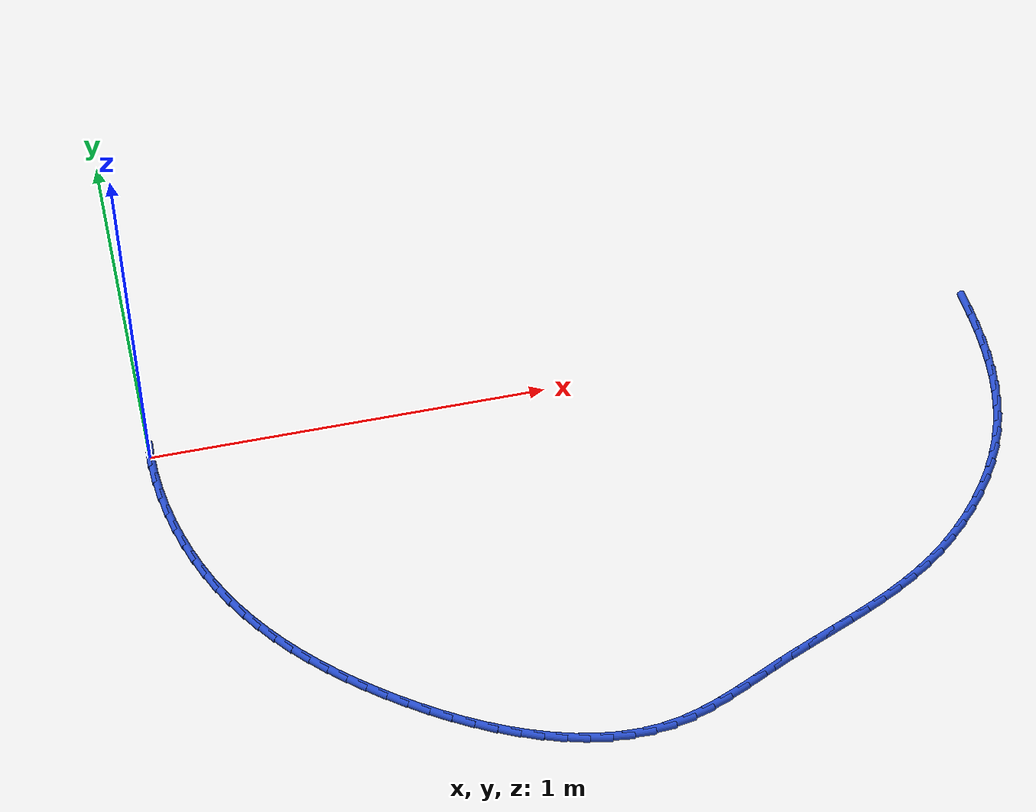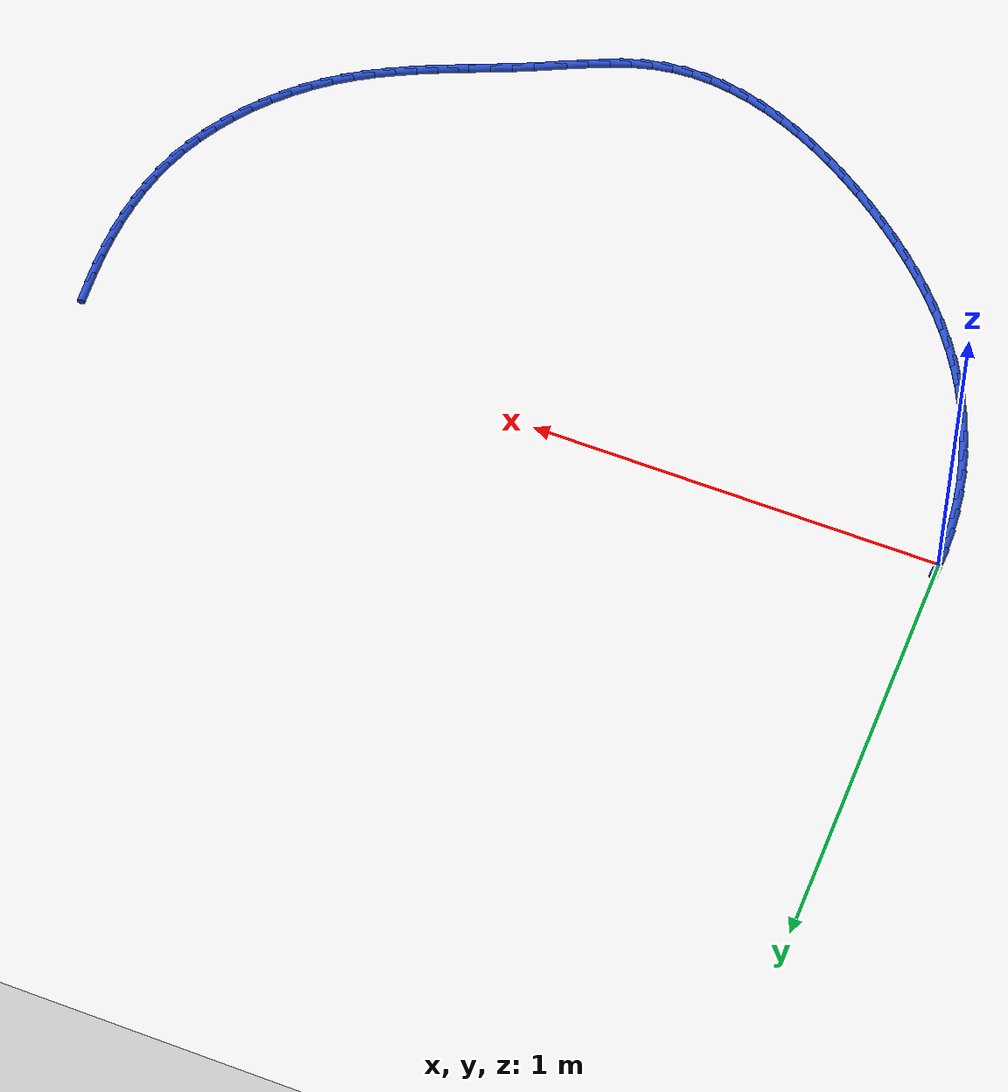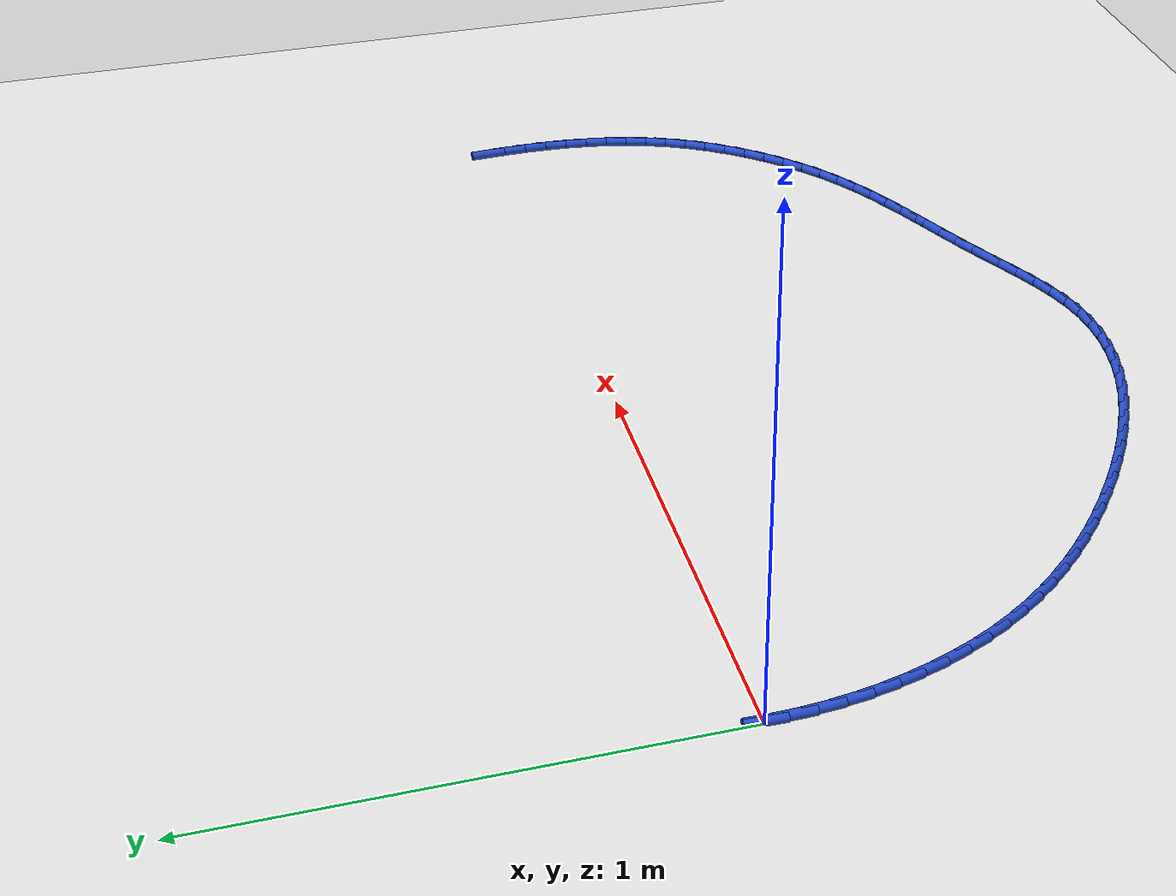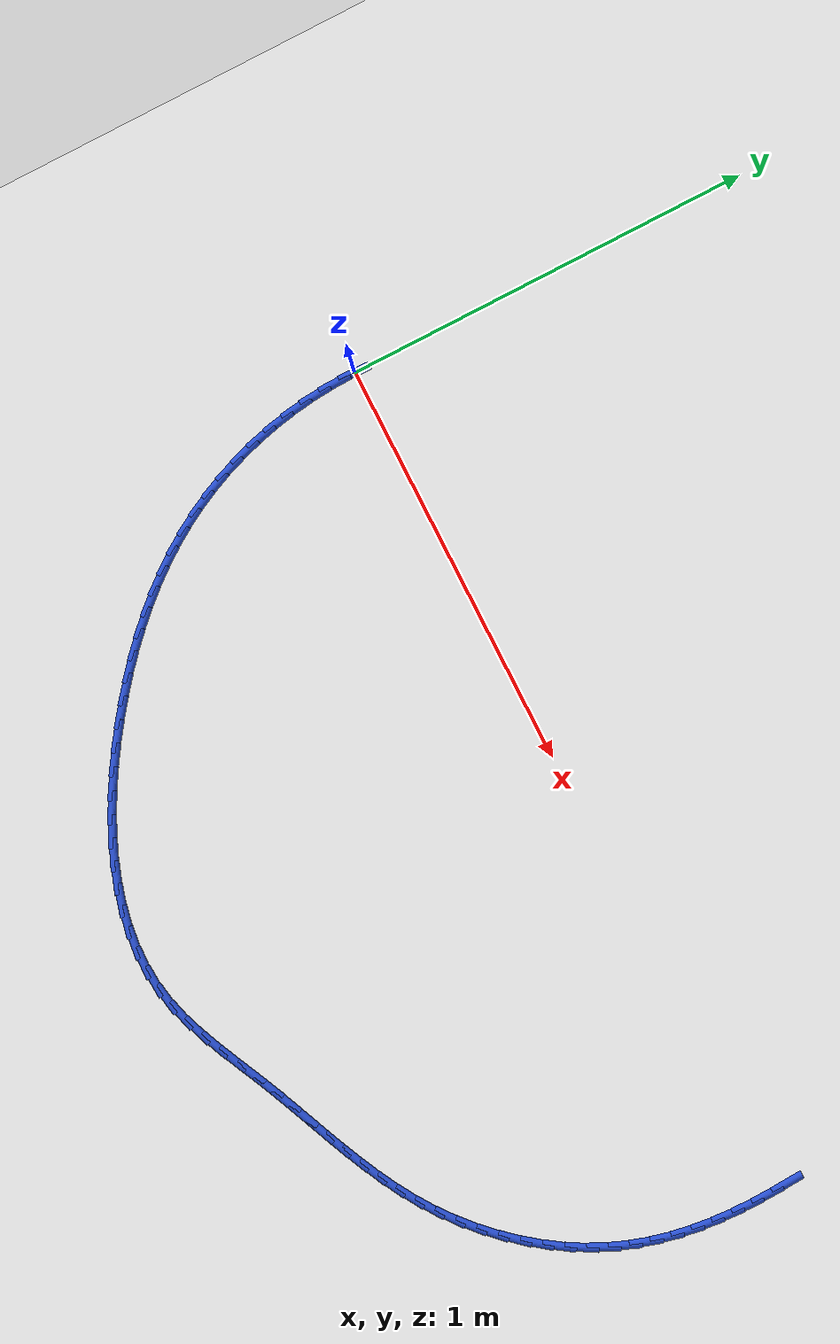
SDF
<sdf version="1.6">
 <world name="default">
  <model name="ground_plane">
   <static>1</static>
   <link name="link">
    <collision name="collision">
     <geometry><plane><normal>0 0 1</normal><size>100 100</size></plane></geometry>
     <surface><friction><ode><mu>100</mu><mu2>50</mu2></ode></friction></surface>
    </collision>
    <visual name="visual">
     <cast_shadows>0</cast_shadows>
     <geometry><plane><normal>0 0 1</normal><size>100 100</size></plane></geometry>
     <material>
      <script><uri>file://media/materials/scripts/gazebo.material</uri><name>Gazebo/WhiteGlow</name></script>
     </material>
    </visual>
   </link>
  </model>
  <model name="line">
   <link name="link_0">
    <pose>-1.5612511283791264e-17 -8.326672684688674e-17 0.01 0 1.57 1.539218456187788</pose>
    <collision name="collision">
     <geometry><cylinder><radius>0.01</radius><length>0.08</length></cylinder></geometry>
    </collision>
    <visual name="visual">
     <material>
      <script><name>Gazebo/Blue</name><uri>file://media/materials/scripts/gazebo.material</uri></script>
     </material>
     <geometry><cylinder><radius>0.01</radius><length>0.08</length></cylinder></geometry>
    </visual>
   </link>
   <link name="link_66">
    <pose>2.121710802949924 0.03383902879703837 0.01 0 1.57 -1.516752795284144</pose>
    <collision name="collision">
     <geometry><cylinder><radius>0.01</radius><length>0.08</length></cylinder></geometry>
    </collision>
    <visual name="visual">
     <material>
      <script><name>Gazebo/Blue</name><uri>file://media/materials/scripts/gazebo.material</uri></script>
     </material>
     <geometry><cylinder><radius>0.01</radius><length>0.08</length></cylinder></geometry>
    </visual>
   </link>
   <link name="link_67">
    <pose>2.124544965735657 -0.018552125512055075 0.01 0 1.57 -1.5530451899513327</pose>
    <collision name="collision">
     <geometry><cylinder><radius>0.01</radius><length>0.08</length></cylinder></geometry>
    </collision>
    <visual name="visual">
     <material>
      <script><name>Gazebo/Blue</name><uri>file://media/materials/scripts/gazebo.material</uri></script>
     </material>
     <geometry><cylinder><radius>0.01</radius><length>0.08</length></cylinder></geometry>
    </visual>
   </link>
   <link name="link_68">
    <pose>2.125463035978181 -0.07026564784786656 0.01 0 1.57 1.5468229711447778</pose>
    <collision name="collision">
     <geometry><cylinder><radius>0.01</radius><length>0.08</length></cylinder></geometry>
    </collision>
    <visual name="visual">
     <material>
      <script><name>Gazebo/Blue</name><uri>file://media/materials/scripts/gazebo.material</uri></script>
     </material>
     <geometry><cylinder><radius>0.01</radius><length>0.08</length></cylinder></geometry>
    </visual>
   </link>
   <link name="link_69">
    <pose>2.1242399769922318 -0.12127330353884397 0.01 0 1.57 1.499523361760676</pose>
    <collision name="collision">
     <geometry><cylinder><radius>0.01</radius><length>0.08</length></cylinder></geometry>
    </collision>
    <visual name="visual">
     <material>
      <script><name>Gazebo/Blue</name><uri>file://media/materials/scripts/gazebo.material</uri></script>
     </material>
     <geometry><cylinder><radius>0.01</radius><length>0.08</length></cylinder></geometry>
    </visual>
   </link>
   <link name="link_70">
    <pose>2.120650752092542 -0.1715468579134352 0.01 0 1.57 1.446609871704285</pose>
    <collision name="collision">
     <geometry><cylinder><radius>0.01</radius><length>0.08</length></cylinder></geometry>
    </collision>
    <visual name="visual">
     <material>
      <script><name>Gazebo/Blue</name><uri>file://media/materials/scripts/gazebo.material</uri></script>
     </material>
     <geometry><cylinder><radius>0.01</radius><length>0.08</length></cylinder></geometry>
    </visual>
   </link>
   <link name="link_71">
    <pose>2.114470324593847 -0.22105807630008606 0.01 0 1.57 1.3881950763023854</pose>
    <collision name="collision">
     <geometry><cylinder><radius>0.01</radius><length>0.08</length></cylinder></geometry>
    </collision>
    <visual name="visual">
     <material>
      <script><name>Gazebo/Blue</name><uri>file://media/materials/scripts/gazebo.material</uri></script>
     </material>
     <geometry><cylinder><radius>0.01</radius><length>0.08</length></cylinder></geometry>
    </visual>
   </link>
   <link name="link_72">
    <pose>2.1054736578108804 -0.26977872402724434 0.01 0 1.57 1.324590390201483</pose>
    <collision name="collision">
     <geometry><cylinder><radius>0.01</radius><length>0.08</length></cylinder></geometry>
    </collision>
    <visual name="visual">
     <material>
      <script><name>Gazebo/Blue</name><uri>file://media/materials/scripts/gazebo.material</uri></script>
     </material>
     <geometry><cylinder><radius>0.01</radius><length>0.08</length></cylinder></geometry>
    </visual>
   </link>
   <link name="link_73">
    <pose>2.0934357150583773 -0.3176805664233573 0.01 0 1.57 1.2563444600303963</pose>
    <collision name="collision">
     <geometry><cylinder><radius>0.01</radius><length>0.08</length></cylinder></geometry>
    </collision>
    <visual name="visual">
     <material>
      <script><name>Gazebo/Blue</name><uri>file://media/materials/scripts/gazebo.material</uri></script>
     </material>
     <geometry><cylinder><radius>0.01</radius><length>0.08</length></cylinder></geometry>
    </visual>
   </link>
   <link name="link_74">
    <pose>2.078131459651071 -0.3647353688168721 0.01 0 1.57 1.1842600952279532</pose>
    <collision name="collision">
     <geometry><cylinder><radius>0.01</radius><length>0.08</length></cylinder></geometry>
    </collision>
    <visual name="visual">
     <material>
      <script><name>Gazebo/Blue</name><uri>file://media/materials/scripts/gazebo.material</uri></script>
     </material>
     <geometry><cylinder><radius>0.01</radius><length>0.08</length></cylinder></geometry>
    </visual>
   </link>
   <link name="link_75">
    <pose>2.059335854903695 -0.41091489653623653 0.01 0 1.57 1.1095890347176138</pose>
    <collision name="collision">
     <geometry><cylinder><radius>0.01</radius><length>0.08</length></cylinder></geometry>
    </collision>
    <visual name="visual">
     <material>
      <script><name>Gazebo/Blue</name><uri>file://media/materials/scripts/gazebo.material</uri></script>
     </material>
     <geometry><cylinder><radius>0.01</radius><length>0.08</length></cylinder></geometry>
    </visual>
   </link>
   <link name="link_76">
    <pose>2.0368396584949444 -0.4561831254000856 0.01 0 1.57 1.0367382895987984</pose>
    <collision name="collision">
     <geometry><cylinder><radius>0.01</radius><length>0.08</length></cylinder></geometry>
    </collision>
    <visual name="visual">
     <material>
      <script><name>Gazebo/Blue</name><uri>file://media/materials/scripts/gazebo.material</uri></script>
     </material>
     <geometry><cylinder><radius>0.01</radius><length>0.08</length></cylinder></geometry>
    </visual>
   </link>
   <link name="link_77">
    <pose>2.0107095973649773 -0.5003679279135375 0.01 0 1.57 0.968061933112264</pose>
    <collision name="collision">
     <geometry><cylinder><radius>0.01</radius><length>0.08</length></cylinder></geometry>
    </collision>
    <visual name="visual">
     <material>
      <script><name>Gazebo/Blue</name><uri>file://media/materials/scripts/gazebo.material</uri></script>
     </material>
     <geometry><cylinder><radius>0.01</radius><length>0.08</length></cylinder></geometry>
    </visual>
   </link>
   <link name="link_78">
    <pose>1.9812471344347227 -0.5431814088160734 0.01 0 1.57 0.9025274810790618</pose>
    <collision name="collision">
     <geometry><cylinder><radius>0.01</radius><length>0.08</length></cylinder></geometry>
    </collision>
    <visual name="visual">
     <material>
      <script><name>Gazebo/Blue</name><uri>file://media/materials/scripts/gazebo.material</uri></script>
     </material>
     <geometry><cylinder><radius>0.01</radius><length>0.08</length></cylinder></geometry>
    </visual>
   </link>
   <link name="link_79">
    <pose>1.9487612125732368 -0.5843319838648571 0.01 0 1.57 0.8390540562935729</pose>
    <collision name="collision">
     <geometry><cylinder><radius>0.01</radius><length>0.08</length></cylinder></geometry>
    </collision>
    <visual name="visual">
     <material>
      <script><name>Gazebo/Blue</name><uri>file://media/materials/scripts/gazebo.material</uri></script>
     </material>
     <geometry><cylinder><radius>0.01</radius><length>0.08</length></cylinder></geometry>
    </visual>
   </link>
   <link name="link_80">
    <pose>1.9135607746495762 -0.6235280688170544 0.01 0 1.57 0.7765996309545067</pose>
    <collision name="collision">
     <geometry><cylinder><radius>0.01</radius><length>0.08</length></cylinder></geometry>
    </collision>
    <visual name="visual">
     <material>
      <script><name>Gazebo/Blue</name><uri>file://media/materials/scripts/gazebo.material</uri></script>
     </material>
     <geometry><cylinder><radius>0.01</radius><length>0.08</length></cylinder></geometry>
    </visual>
   </link>
   <link name="link_81">
    <pose>1.8759547635327967 -0.6604780794298302 0.01 0 1.57 0.7141395448266873</pose>
    <collision name="collision">
     <geometry><cylinder><radius>0.01</radius><length>0.08</length></cylinder></geometry>
    </collision>
    <visual name="visual">
     <material>
      <script><name>Gazebo/Blue</name><uri>file://media/materials/scripts/gazebo.material</uri></script>
     </material>
     <geometry><cylinder><radius>0.01</radius><length>0.08</length></cylinder></geometry>
    </visual>
   </link>
   <link name="link_82">
    <pose>1.8362521220919545 -0.6948904314603497 0.01 0 1.57 0.650641904950736</pose>
    <collision name="collision">
     <geometry><cylinder><radius>0.01</radius><length>0.08</length></cylinder></geometry>
    </collision>
    <visual name="visual">
     <material>
      <script><name>Gazebo/Blue</name><uri>file://media/materials/scripts/gazebo.material</uri></script>
     </material>
     <geometry><cylinder><radius>0.01</radius><length>0.08</length></cylinder></geometry>
    </visual>
   </link>
   <link name="link_83">
    <pose>1.794761781495293 -0.7264736156939265 0.01 0 1.57 0.5873682630127807</pose>
    <collision name="collision">
     <geometry><cylinder><radius>0.01</radius><length>0.08</length></cylinder></geometry>
    </collision>
    <visual name="visual">
     <material>
      <script><name>Gazebo/Blue</name><uri>file://media/materials/scripts/gazebo.material</uri></script>
     </material>
     <geometry><cylinder><radius>0.01</radius><length>0.08</length></cylinder></geometry>
    </visual>
   </link>
   <link name="link_84">
    <pose>1.751767577398934 -0.7550970407872775 0.01 0 1.57 0.5313862653219047</pose>
    <collision name="collision">
     <geometry><cylinder><radius>0.01</radius><length>0.08</length></cylinder></geometry>
    </collision>
    <visual name="visual">
     <material>
      <script><name>Gazebo/Blue</name><uri>file://media/materials/scripts/gazebo.material</uri></script>
     </material>
     <geometry><cylinder><radius>0.01</radius><length>0.08</length></cylinder></geometry>
    </visual>
   </link>
   <link name="link_85">
    <pose>1.7074751924183174 -0.7811312496592129 0.01 0 1.57 0.4847891348175147</pose>
    <collision name="collision">
     <geometry><cylinder><radius>0.01</radius><length>0.08</length></cylinder></geometry>
    </collision>
    <visual name="visual">
     <material>
      <script><name>Gazebo/Blue</name><uri>file://media/materials/scripts/gazebo.material</uri></script>
     </material>
     <geometry><cylinder><radius>0.01</radius><length>0.08</length></cylinder></geometry>
    </visual>
   </link>
   <link name="link_86">
    <pose>1.6620751389200195 -0.8050440601573802 0.01 0 1.57 0.4479931078302633</pose>
    <collision name="collision">
     <geometry><cylinder><radius>0.01</radius><length>0.08</length></cylinder></geometry>
    </collision>
    <visual name="visual">
     <material>
      <script><name>Gazebo/Blue</name><uri>file://media/materials/scripts/gazebo.material</uri></script>
     </material>
     <geometry><cylinder><radius>0.01</radius><length>0.08</length></cylinder></geometry>
    </visual>
   </link>
   <link name="link_87">
    <pose>1.6157579292706188 -0.8273032901294258 0.01 0 1.57 0.42115090270035405</pose>
    <collision name="collision">
     <geometry><cylinder><radius>0.01</radius><length>0.08</length></cylinder></geometry>
    </collision>
    <visual name="visual">
     <material>
      <script><name>Gazebo/Blue</name><uri>file://media/materials/scripts/gazebo.material</uri></script>
     </material>
     <geometry><cylinder><radius>0.01</radius><length>0.08</length></cylinder></geometry>
    </visual>
   </link>
   <link name="link_88">
    <pose>1.5687140758366904 -0.8483767574229962 0.01 0 1.57 0.4042541805746691</pose>
    <collision name="collision">
     <geometry><cylinder><radius>0.01</radius><length>0.08</length></cylinder></geometry>
    </collision>
    <visual name="visual">
     <material>
      <script><name>Gazebo/Blue</name><uri>file://media/materials/scripts/gazebo.material</uri></script>
     </material>
     <geometry><cylinder><radius>0.01</radius><length>0.08</length></cylinder></geometry>
    </visual>
   </link>
   <link name="link_89">
    <pose>1.5211340909848121 -0.8687322798857388 0.01 0 1.57 0.39721361840993136</pose>
    <collision name="collision">
     <geometry><cylinder><radius>0.01</radius><length>0.08</length></cylinder></geometry>
    </collision>
    <visual name="visual">
     <material>
      <script><name>Gazebo/Blue</name><uri>file://media/materials/scripts/gazebo.material</uri></script>
     </material>
     <geometry><cylinder><radius>0.01</radius><length>0.08</length></cylinder></geometry>
    </visual>
   </link>
   <link name="link_90">
    <pose>1.4732084870815598 -0.8888376753652998 0.01 0 1.57 0.3999097978043688</pose>
    <collision name="collision">
     <geometry><cylinder><radius>0.01</radius><length>0.08</length></cylinder></geometry>
    </collision>
    <visual name="visual">
     <material>
      <script><name>Gazebo/Blue</name><uri>file://media/materials/scripts/gazebo.material</uri></script>
     </material>
     <geometry><cylinder><radius>0.01</radius><length>0.08</length></cylinder></geometry>
    </visual>
   </link>
   <link name="link_91">
    <pose>1.4251277764935097 -0.9091607617093265 0.01 0 1.57 0.4122143110266186</pose>
    <collision name="collision">
     <geometry><cylinder><radius>0.01</radius><length>0.08</length></cylinder></geometry>
    </collision>
    <visual name="visual">
     <material>
      <script><name>Gazebo/Blue</name><uri>file://media/materials/scripts/gazebo.material</uri></script>
     </material>
     <geometry><cylinder><radius>0.01</radius><length>0.08</length></cylinder></geometry>
    </visual>
   </link>
   <link name="link_92">
    <pose>1.3770824715872405 -0.9301693567654653 0.01 0 1.57 0.4319585872747011</pose>
    <collision name="collision">
     <geometry><cylinder><radius>0.01</radius><length>0.08</length></cylinder></geometry>
    </collision>
    <visual name="visual">
     <material>
      <script><name>Gazebo/Blue</name><uri>file://media/materials/scripts/gazebo.material</uri></script>
     </material>
     <geometry><cylinder><radius>0.01</radius><length>0.08</length></cylinder></geometry>
    </visual>
   </link>
   <link name="link_93">
    <pose>1.3292392908655029 -0.9522247617170382 0.01 0 1.57 0.4406627483461758</pose>
    <collision name="collision">
     <geometry><cylinder><radius>0.01</radius><length>0.08</length></cylinder></geometry>
    </collision>
    <visual name="visual">
     <material>
      <script><name>Gazebo/Blue</name><uri>file://media/materials/scripts/gazebo.material</uri></script>
     </material>
     <geometry><cylinder><radius>0.01</radius><length>0.08</length></cylinder></geometry>
    </visual>
   </link>
   <link name="link_94">
    <pose>1.2815476888441428 -0.9747156641637281 0.01 0 1.57 0.42852576393943814</pose>
    <collision name="collision">
     <geometry><cylinder><radius>0.01</radius><length>0.08</length></cylinder></geometry>
    </collision>
    <visual name="visual">
     <material>
      <script><name>Gazebo/Blue</name><uri>file://media/materials/scripts/gazebo.material</uri></script>
     </material>
     <geometry><cylinder><radius>0.01</radius><length>0.08</length></cylinder></geometry>
    </visual>
   </link>
   <link name="link_95">
    <pose>1.2338407901345985 -0.9965099841043649 0.01 0 1.57 0.39490643138714066</pose>
    <collision name="collision">
     <geometry><cylinder><radius>0.01</radius><length>0.08</length></cylinder></geometry>
    </collision>
    <visual name="visual">
     <material>
      <script><name>Gazebo/Blue</name><uri>file://media/materials/scripts/gazebo.material</uri></script>
     </material>
     <geometry><cylinder><radius>0.01</radius><length>0.08</length></cylinder></geometry>
    </visual>
   </link>
   <link name="link_96">
    <pose>1.1859506164960754 -1.0164707044606534 0.01 0 1.57 0.3386236687436855</pose>
    <collision name="collision">
     <geometry><cylinder><radius>0.01</radius><length>0.08</length></cylinder></geometry>
    </collision>
    <visual name="visual">
     <material>
      <script><name>Gazebo/Blue</name><uri>file://media/materials/scripts/gazebo.material</uri></script>
     </material>
     <geometry><cylinder><radius>0.01</radius><length>0.08</length></cylinder></geometry>
    </visual>
   </link>
   <link name="link_97">
    <pose>1.1377091896877796 -1.0334608081542969 0.01 0 1.57 0.25829623680136515</pose>
    <collision name="collision">
     <geometry><cylinder><radius>0.01</radius><length>0.08</length></cylinder></geometry>
    </collision>
    <visual name="visual">
     <material>
      <script><name>Gazebo/Blue</name><uri>file://media/materials/scripts/gazebo.material</uri></script>
     </material>
     <geometry><cylinder><radius>0.01</radius><length>0.08</length></cylinder></geometry>
    </visual>
   </link>
   <link name="link_98">
    <pose>1.0889485314689178 -1.0463432781069995 0.01 0 1.57 0.1557062238658864</pose>
    <collision name="collision">
     <geometry><cylinder><radius>0.01</radius><length>0.08</length></cylinder></geometry>
    </collision>
    <visual name="visual">
     <material>
      <script><name>Gazebo/Blue</name><uri>file://media/materials/scripts/gazebo.material</uri></script>
     </material>
     <geometry><cylinder><radius>0.01</radius><length>0.08</length></cylinder></geometry>
    </visual>
   </link>
   <link name="link_99">
    <pose>1.0395287820265562 -1.0541010363815453 0.01 0 1.57 0.05080528831913032</pose>
    <collision name="collision">
     <geometry><cylinder><radius>0.01</radius><length>0.08</length></cylinder></geometry>
    </collision>
    <visual name="visual">
     <material>
      <script><name>Gazebo/Blue</name><uri>file://media/materials/scripts/gazebo.material</uri></script>
     </material>
     <geometry><cylinder><radius>0.01</radius><length>0.08</length></cylinder></geometry>
    </visual>
   </link>
   <link name="link_100">
    <pose>0.9895273031952463 -1.0566435638779168 0.01 0 1.57 -0.04622653227817579</pose>
    <collision name="collision">
     <geometry><cylinder><radius>0.01</radius><length>0.08</length></cylinder></geometry>
    </collision>
    <visual name="visual">
     <material>
      <script><name>Gazebo/Blue</name><uri>file://media/materials/scripts/gazebo.material</uri></script>
     </material>
     <geometry><cylinder><radius>0.01</radius><length>0.08</length></cylinder></geometry>
    </visual>
   </link>
   <link name="link_101">
    <pose>0.9391226237987809 -1.0543118692420776 0.01 0 1.57 -0.13472433084452273</pose>
    <collision name="collision">
     <geometry><cylinder><radius>0.01</radius><length>0.08</length></cylinder></geometry>
    </collision>
    <visual name="visual">
     <material>
      <script><name>Gazebo/Blue</name><uri>file://media/materials/scripts/gazebo.material</uri></script>
     </material>
     <geometry><cylinder><radius>0.01</radius><length>0.08</length></cylinder></geometry>
    </visual>
   </link>
   <link name="link_102">
    <pose>0.8884938373841386 -1.0474493699464797 0.01 0 1.57 -0.21469831747212945</pose>
    <collision name="collision">
     <geometry><cylinder><radius>0.01</radius><length>0.08</length></cylinder></geometry>
    </collision>
    <visual name="visual">
     <material>
      <script><name>Gazebo/Blue</name><uri>file://media/materials/scripts/gazebo.material</uri></script>
     </material>
     <geometry><cylinder><radius>0.01</radius><length>0.08</length></cylinder></geometry>
    </visual>
   </link>
   <link name="link_103">
    <pose>0.8378200374982997 -1.0363994834635746 0.01 0 1.57 -0.28658371739104693</pose>
    <collision name="collision">
     <geometry><cylinder><radius>0.01</radius><length>0.08</length></cylinder></geometry>
    </collision>
    <visual name="visual">
     <material>
      <script><name>Gazebo/Blue</name><uri>file://media/materials/scripts/gazebo.material</uri></script>
     </material>
     <geometry><cylinder><radius>0.01</radius><length>0.08</length></cylinder></geometry>
    </visual>
   </link>
   <link name="link_104">
    <pose>0.7872803176882424 -1.0215056272658138 0.01 0 1.57 -0.35105877717663325</pose>
    <collision name="collision">
     <geometry><cylinder><radius>0.01</radius><length>0.08</length></cylinder></geometry>
    </collision>
    <visual name="visual">
     <material>
      <script><name>Gazebo/Blue</name><uri>file://media/materials/scripts/gazebo.material</uri></script>
     </material>
     <geometry><cylinder><radius>0.01</radius><length>0.08</length></cylinder></geometry>
    </visual>
   </link>
   <link name="link_105">
    <pose>0.737053771500946 -1.0031112188256495 0.01 0 1.57 -0.4089082064906184</pose>
    <collision name="collision">
     <geometry><cylinder><radius>0.01</radius><length>0.08</length></cylinder></geometry>
    </collision>
    <visual name="visual">
     <material>
      <script><name>Gazebo/Blue</name><uri>file://media/materials/scripts/gazebo.material</uri></script>
     </material>
     <geometry><cylinder><radius>0.01</radius><length>0.08</length></cylinder></geometry>
    </visual>
   </link>
   <link name="link_106">
    <pose>0.6873194924833897 -0.9815596756155334 0.01 0 1.57 -0.4609339712137109</pose>
    <collision name="collision">
     <geometry><cylinder><radius>0.01</radius><length>0.08</length></cylinder></geometry>
    </collision>
    <visual name="visual">
     <material>
      <script><name>Gazebo/Blue</name><uri>file://media/materials/scripts/gazebo.material</uri></script>
     </material>
     <geometry><cylinder><radius>0.01</radius><length>0.08</length></cylinder></geometry>
    </visual>
   </link>
   <link name="link_107">
    <pose>0.638256574182552 -0.9571944151079168 0.01 0 1.57 -0.5079042265964993</pose>
    <collision name="collision">
     <geometry><cylinder><radius>0.01</radius><length>0.08</length></cylinder></geometry>
    </collision>
    <visual name="visual">
     <material>
      <script><name>Gazebo/Blue</name><uri>file://media/materials/scripts/gazebo.material</uri></script>
     </material>
     <geometry><cylinder><radius>0.01</radius><length>0.08</length></cylinder></geometry>
    </visual>
   </link>
   <link name="link_108">
    <pose>0.5900441101454132 -0.9303588547752526 0.01 0 1.57 -0.5505289620692452</pose>
    <collision name="collision">
     <geometry><cylinder><radius>0.01</radius><length>0.08</length></cylinder></geometry>
    </collision>
    <visual name="visual">
     <material>
      <script><name>Gazebo/Blue</name><uri>file://media/materials/scripts/gazebo.material</uri></script>
     </material>
     <geometry><cylinder><radius>0.01</radius><length>0.08</length></cylinder></geometry>
    </visual>
   </link>
   <link name="link_109">
    <pose>0.5428611939189518 -0.9013964120899918 0.01 0 1.57 -0.5894527115050118</pose>
    <collision name="collision">
     <geometry><cylinder><radius>0.01</radius><length>0.08</length></cylinder></geometry>
    </collision>
    <visual name="visual">
     <material>
      <script><name>Gazebo/Blue</name><uri>file://media/materials/scripts/gazebo.material</uri></script>
     </material>
     <geometry><cylinder><radius>0.01</radius><length>0.08</length></cylinder></geometry>
    </visual>
   </link>
   <link name="link_110">
    <pose>0.49688691905014626 -0.870650504524586 0.01 0 1.57 -0.6252574925964445</pose>
    <collision name="collision">
     <geometry><cylinder><radius>0.01</radius><length>0.08</length></cylinder></geometry>
    </collision>
    <visual name="visual">
     <material>
      <script><name>Gazebo/Blue</name><uri>file://media/materials/scripts/gazebo.material</uri></script>
     </material>
     <geometry><cylinder><radius>0.01</radius><length>0.08</length></cylinder></geometry>
    </visual>
   </link>
   <link name="link_111">
    <pose>0.4523003790859772 -0.8384645495514882 0.01 0 1.57 -0.6585963305737141</pose>
    <collision name="collision">
     <geometry><cylinder><radius>0.01</radius><length>0.08</length></cylinder></geometry>
    </collision>
    <visual name="visual">
     <material>
      <script><name>Gazebo/Blue</name><uri>file://media/materials/scripts/gazebo.material</uri></script>
     </material>
     <geometry><cylinder><radius>0.01</radius><length>0.08</length></cylinder></geometry>
    </visual>
   </link>
   <link name="link_112">
    <pose>0.4092782456653231 -0.8051715186122296 0.01 0 1.57 -0.6923667752626151</pose>
    <collision name="collision">
     <geometry><cylinder><radius>0.01</radius><length>0.08</length></cylinder></geometry>
    </collision>
    <visual name="visual">
     <material>
      <script><name>Gazebo/Blue</name><uri>file://media/materials/scripts/gazebo.material</uri></script>
     </material>
     <geometry><cylinder><radius>0.01</radius><length>0.08</length></cylinder></geometry>
    </visual>
   </link>
   <link name="link_113">
    <pose>0.36794891352414044 -0.7708961580630471 0.01 0 1.57 -0.7289947391642094</pose>
    <collision name="collision">
     <geometry><cylinder><radius>0.01</radius><length>0.08</length></cylinder></geometry>
    </collision>
    <visual name="visual">
     <material>
      <script><name>Gazebo/Blue</name><uri>file://media/materials/scripts/gazebo.material</uri></script>
     </material>
     <geometry><cylinder><radius>0.01</radius><length>0.08</length></cylinder></geometry>
    </visual>
   </link>
   <link name="link_114">
    <pose>0.3283962981631486 -0.735571369050763 0.01 0 1.57 -0.7686054514408829</pose>
    <collision name="collision">
     <geometry><cylinder><radius>0.01</radius><length>0.08</length></cylinder></geometry>
    </collision>
    <visual name="visual">
     <material>
      <script><name>Gazebo/Blue</name><uri>file://media/materials/scripts/gazebo.material</uri></script>
     </material>
     <geometry><cylinder><radius>0.01</radius><length>0.08</length></cylinder></geometry>
    </visual>
   </link>
   <link name="link_115">
    <pose>0.29070265430713577 -0.6991228895615824 0.01 0 1.57 -0.8111968529399752</pose>
    <collision name="collision">
     <geometry><cylinder><radius>0.01</radius><length>0.08</length></cylinder></geometry>
    </collision>
    <visual name="visual">
     <material>
      <script><name>Gazebo/Blue</name><uri>file://media/materials/scripts/gazebo.material</uri></script>
     </material>
     <geometry><cylinder><radius>0.01</radius><length>0.08</length></cylinder></geometry>
    </visual>
   </link>
   <link name="link_116">
    <pose>0.2549502366808921 -0.6614764575817108 0.01 0 1.57 -0.8567138005215538</pose>
    <collision name="collision">
     <geometry><cylinder><radius>0.01</radius><length>0.08</length></cylinder></geometry>
    </collision>
    <visual name="visual">
     <material>
      <script><name>Gazebo/Blue</name><uri>file://media/materials/scripts/gazebo.material</uri></script>
     </material>
     <geometry><cylinder><radius>0.01</radius><length>0.08</length></cylinder></geometry>
    </visual>
   </link>
   <link name="link_117">
    <pose>0.22122130000920578 -0.6225578110973529 0.01 0 1.57 -0.90503721017218</pose>
    <collision name="collision">
     <geometry><cylinder><radius>0.01</radius><length>0.08</length></cylinder></geometry>
    </collision>
    <visual name="visual">
     <material>
      <script><name>Gazebo/Blue</name><uri>file://media/materials/scripts/gazebo.material</uri></script>
     </material>
     <geometry><cylinder><radius>0.01</radius><length>0.08</length></cylinder></geometry>
    </visual>
   </link>
   <link name="link_118">
    <pose>0.1895980990168654 -0.5822926880947129 0.01 0 1.57 -0.9559749377261827</pose>
    <collision name="collision">
     <geometry><cylinder><radius>0.01</radius><length>0.08</length></cylinder></geometry>
    </collision>
    <visual name="visual">
     <material>
      <script><name>Gazebo/Blue</name><uri>file://media/materials/scripts/gazebo.material</uri></script>
     </material>
     <geometry><cylinder><radius>0.01</radius><length>0.08</length></cylinder></geometry>
    </visual>
   </link>
   <link name="link_119">
    <pose>0.1601628884286606 -0.5406068265599971 0.01 0 1.57 -1.0092560342027326</pose>
    <collision name="collision">
     <geometry><cylinder><radius>0.01</radius><length>0.08</length></cylinder></geometry>
    </collision>
    <visual name="visual">
     <material>
      <script><name>Gazebo/Blue</name><uri>file://media/materials/scripts/gazebo.material</uri></script>
     </material>
     <geometry><cylinder><radius>0.01</radius><length>0.08</length></cylinder></geometry>
    </visual>
   </link>
   <link name="link_120">
    <pose>0.1329979229693799 -0.49742596447940973 0.01 0 1.57 -1.0645209593886675</pose>
    <collision name="collision">
     <geometry><cylinder><radius>0.01</radius><length>0.08</length></cylinder></geometry>
    </collision>
    <visual name="visual">
     <material>
      <script><name>Gazebo/Blue</name><uri>file://media/materials/scripts/gazebo.material</uri></script>
     </material>
     <geometry><cylinder><radius>0.01</radius><length>0.08</length></cylinder></geometry>
    </visual>
   </link>
   <link name="link_121">
    <pose>0.10818535578821455 -0.45267661667404857 0.01 0 1.57 -1.1204796241915067</pose>
    <collision name="collision">
     <geometry><cylinder><radius>0.01</radius><length>0.08</length></cylinder></geometry>
    </collision>
    <visual name="visual">
     <material>
      <script><name>Gazebo/Blue</name><uri>file://media/materials/scripts/gazebo.material</uri></script>
     </material>
     <geometry><cylinder><radius>0.01</radius><length>0.08</length></cylinder></geometry>
    </visual>
   </link>
   <link name="link_122">
    <pose>0.08579676611268515 -0.4063661657275337 0.01 0 1.57 -1.175434117468384</pose>
    <collision name="collision">
     <geometry><cylinder><radius>0.01</radius><length>0.08</length></cylinder></geometry>
    </collision>
    <visual name="visual">
     <material>
      <script><name>Gazebo/Blue</name><uri>file://media/materials/scripts/gazebo.material</uri></script>
     </material>
     <geometry><cylinder><radius>0.01</radius><length>0.08</length></cylinder></geometry>
    </visual>
   </link>
   <link name="link_123">
    <pose>0.06588406114622979 -0.3586524429048122 0.01 0 1.57 -1.2294495922568278</pose>
    <collision name="collision">
     <geometry><cylinder><radius>0.01</radius><length>0.08</length></cylinder></geometry>
    </collision>
    <visual name="visual">
     <material>
      <script><name>Gazebo/Blue</name><uri>file://media/materials/scripts/gazebo.material</uri></script>
     </material>
     <geometry><cylinder><radius>0.01</radius><length>0.08</length></cylinder></geometry>
    </visual>
   </link>
   <link name="link_124">
    <pose>0.048497004005097516 -0.3097096771271711 0.01 0 1.57 -1.28278595591411</pose>
    <collision name="collision">
     <geometry><cylinder><radius>0.01</radius><length>0.08</length></cylinder></geometry>
    </collision>
    <visual name="visual">
     <material>
      <script><name>Gazebo/Blue</name><uri>file://media/materials/scripts/gazebo.material</uri></script>
     </material>
     <geometry><cylinder><radius>0.01</radius><length>0.08</length></cylinder></geometry>
    </visual>
   </link>
   <link name="link_125">
    <pose>0.03368535780553662 -0.2597120973158958 0.01 0 1.57 -1.3357027609614516</pose>
    <collision name="collision">
     <geometry><cylinder><radius>0.01</radius><length>0.08</length></cylinder></geometry>
    </collision>
    <visual name="visual">
     <material>
      <script><name>Gazebo/Blue</name><uri>file://media/materials/scripts/gazebo.material</uri></script>
     </material>
     <geometry><cylinder><radius>0.01</radius><length>0.08</length></cylinder></geometry>
    </visual>
   </link>
   <link name="link_126">
    <pose>0.021498885663795417 -0.20883393239227097 0.01 0 1.57 -1.388456967259485</pose>
    <collision name="collision">
     <geometry><cylinder><radius>0.01</radius><length>0.08</length></cylinder></geometry>
    </collision>
    <visual name="visual">
     <material>
      <script><name>Gazebo/Blue</name><uri>file://media/materials/scripts/gazebo.material</uri></script>
     </material>
     <geometry><cylinder><radius>0.01</radius><length>0.08</length></cylinder></geometry>
    </visual>
   </link>
   <link name="link_127">
    <pose>0.011987350696122757 -0.15724941127758366 0.01 0 1.57 -1.4413011223451788</pose>
    <collision name="collision">
     <geometry><cylinder><radius>0.01</radius><length>0.08</length></cylinder></geometry>
    </collision>
    <visual name="visual">
     <material>
      <script><name>Gazebo/Blue</name><uri>file://media/materials/scripts/gazebo.material</uri></script>
     </material>
     <geometry><cylinder><radius>0.01</radius><length>0.08</length></cylinder></geometry>
    </visual>
   </link>
   <link name="link_128">
    <pose>0.00520051601876695 -0.1051327628931189 0.01 0 1.57 -1.494481632637712</pose>
    <collision name="collision">
     <geometry><cylinder><radius>0.01</radius><length>0.08</length></cylinder></geometry>
    </collision>
    <visual name="visual">
     <material>
      <script><name>Gazebo/Blue</name><uri>file://media/materials/scripts/gazebo.material</uri></script>
     </material>
     <geometry><cylinder><radius>0.01</radius><length>0.08</length></cylinder></geometry>
    </visual>
   </link>
   <link name="link_129">
    <pose>0.0011881447479765214 -0.05265821616016241 0.01 0 1.57 -1.5482368239012725</pose>
    <collision name="collision">
     <geometry><cylinder><radius>0.01</radius><length>0.08</length></cylinder></geometry>
    </collision>
    <visual name="visual">
     <material>
      <script><name>Gazebo/Blue</name><uri>file://media/materials/scripts/gazebo.material</uri></script>
     </material>
     <geometry><cylinder><radius>0.01</radius><length>0.08</length></cylinder></geometry>
    </visual>
   </link>
   <link name="link_130">
    <pose>-2.7755575615628914e-17 1.6653345369377348e-16 0.01 0 1.57 1.5387981406468165</pose>
    <collision name="collision">
     <geometry><cylinder><radius>0.01</radius><length>0.08</length></cylinder></geometry>
    </collision>
    <visual name="visual">
     <material>
      <script><name>Gazebo/Blue</name><uri>file://media/materials/scripts/gazebo.material</uri></script>
     </material>
     <geometry><cylinder><radius>0.01</radius><length>0.08</length></cylinder></geometry>
    </visual>
   </link>
  </model>
 </world>
</sdf>
